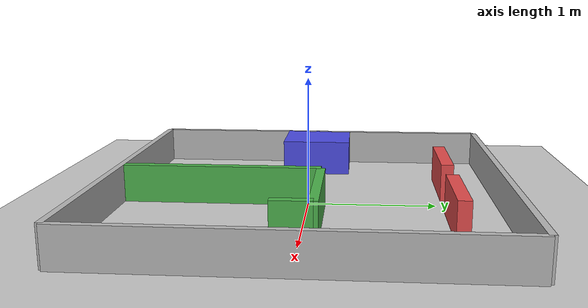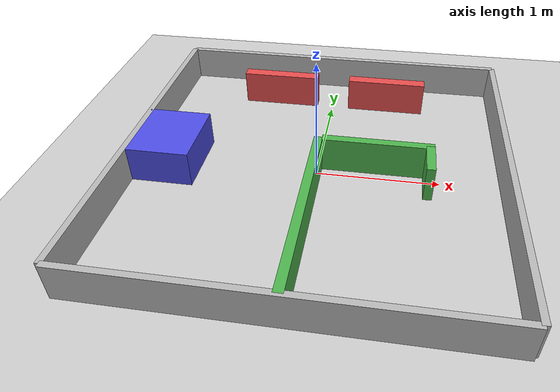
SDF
<sdf version="1.6">
 <world name="gauntlet">
  <physics type="ode">
   <max_step_size>0.001</max_step_size>
   <real_time_factor>1</real_time_factor>
   <real_time_update_rate>1000</real_time_update_rate>
  </physics>
  <include><uri>model://sun</uri></include>
  <include><uri>model://ground_plane</uri></include>
  <model name="outer_walls">
   <static>true</static>
   <link name="link">
    <visual name="v_top">
     <pose>0 1.5 0.15 0 0 0</pose>
     <geometry><box><size>3.0 0.05 0.3</size></box></geometry>
    </visual>
    <collision name="c_top">
     <pose>0 1.5 0.15 0 0 0</pose>
     <geometry><box><size>3.0 0.05 0.3</size></box></geometry>
    </collision>
    <visual name="v_bottom">
     <pose>0 -1.5 0.15 0 0 0</pose>
     <geometry><box><size>3.0 0.05 0.3</size></box></geometry>
    </visual>
    <collision name="c_bottom">
     <pose>0 -1.5 0.15 0 0 0</pose>
     <geometry><box><size>3.0 0.05 0.3</size></box></geometry>
    </collision>
    <visual name="v_left">
     <pose>-1.5 0 0.15 0 0 0</pose>
     <geometry><box><size>0.05 3.0 0.3</size></box></geometry>
    </visual>
    <collision name="c_left">
     <pose>-1.5 0 0.15 0 0 0</pose>
     <geometry><box><size>0.05 3.0 0.3</size></box></geometry>
    </collision>
    <visual name="v_right">
     <pose>1.5 0 0.15 0 0 0</pose>
     <geometry><box><size>0.05 3.0 0.3</size></box></geometry>
    </visual>
    <collision name="c_right">
     <pose>1.5 0 0.15 0 0 0</pose>
     <geometry><box><size>0.05 3.0 0.3</size></box></geometry>
    </collision>
   </link>
  </model>
  <model name="complex_l_structure">
   <static>true</static>
   <link name="link">
    <visual name="v_main">
     <pose>0.0 -0.7 0.15 0 0 0</pose>
     <geometry><box><size>0.07 1.6 0.3</size></box></geometry>
     <material><ambient>0.2 0.6 0.2 1</ambient><diffuse>0.3 0.7 0.3 1</diffuse></material>
    </visual>
    <collision name="c_main">
     <pose>0.0 -0.7 0.15 0 0 0</pose>
     <geometry><box><size>0.07 1.6 0.3</size></box></geometry>
    </collision>
    <visual name="v_arm">
     <pose>0.48 0.1 0.15 0 0 0</pose>
     <geometry><box><size>0.9 0.07 0.3</size></box></geometry>
     <material><ambient>0.2 0.6 0.2 1</ambient><diffuse>0.3 0.7 0.3 1</diffuse></material>
    </visual>
    <collision name="c_arm">
     <pose>0.48 0.1 0.15 0 0 0</pose>
     <geometry><box><size>0.9 0.07 0.3</size></box></geometry>
    </collision>
    <visual name="v_cap">
     <pose>0.9 -0.05 0.15 0 0 0</pose>
     <geometry><box><size>0.07 0.3 0.3</size></box></geometry>
     <material><ambient>0.2 0.6 0.2 1</ambient><diffuse>0.3 0.7 0.3 1</diffuse></material>
    </visual>
    <collision name="c_cap">
     <pose>0.9 -0.05 0.15 0 0 0</pose>
     <geometry><box><size>0.07 0.3 0.3</size></box></geometry>
    </collision>
   </link>
  </model>
  <model name="side_block">
   <static>true</static>
   <pose>-1.235 0.0 0.15 0 0 0</pose>
   <link name="link">
    <visual name="visual">
     <geometry><box><size>0.53 0.6 0.3</size></box></geometry>
     <material><ambient>0.2 0.2 0.8 1</ambient><diffuse>0.3 0.3 0.9 1</diffuse></material>
    </visual>
    <collision name="collision"><geometry><box><size>0.53 0.6 0.3</size></box></geometry></collision>
   </link>
  </model>
  <model name="top_blocks">
   <static>true</static>
   <link name="link">
    <visual name="v_b1">
     <pose>-0.5 1.1 0.15 0 0 0</pose>
     <geometry><box><size>0.7 0.1 0.3</size></box></geometry>
     <material><ambient>0.8 0.2 0.2 1</ambient><diffuse>0.9 0.3 0.3 1</diffuse></material>
    </visual>
    <collision name="c_b1">
     <pose>-0.5 1.1 0.15 0 0 0</pose>
     <geometry><box><size>0.7 0.1 0.3</size></box></geometry>
    </collision>
    <visual name="v_b2">
     <pose>0.5 1.1 0.15 0 0 0</pose>
     <geometry><box><size>0.7 0.1 0.3</size></box></geometry>
     <material><ambient>0.8 0.2 0.2 1</ambient><diffuse>0.9 0.3 0.3 1</diffuse></material>
    </visual>
    <collision name="c_b2">
     <pose>0.5 1.1 0.15 0 0 0</pose>
     <geometry><box><size>0.7 0.1 0.3</size></box></geometry>
    </collision>
   </link>
  </model>
 </world>
</sdf>
